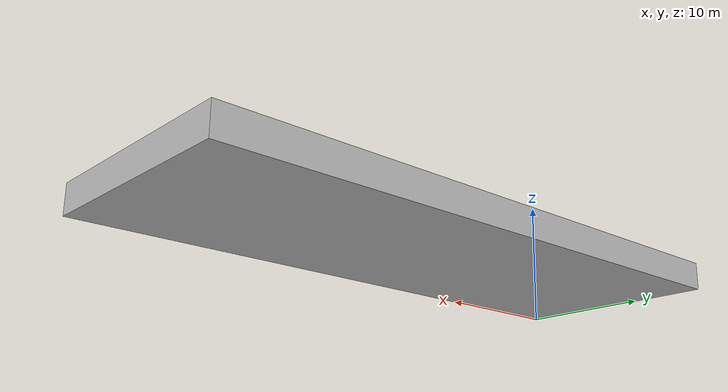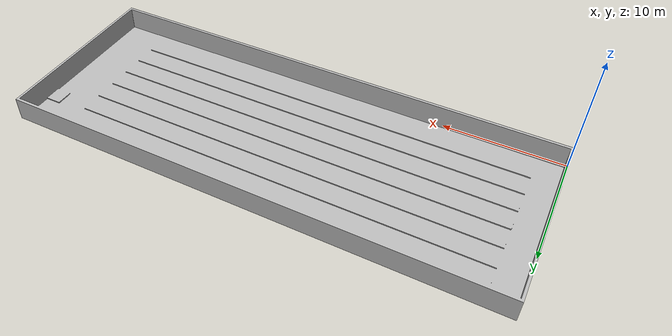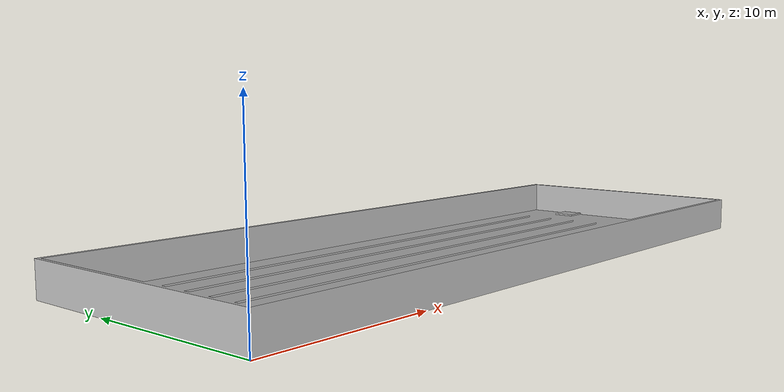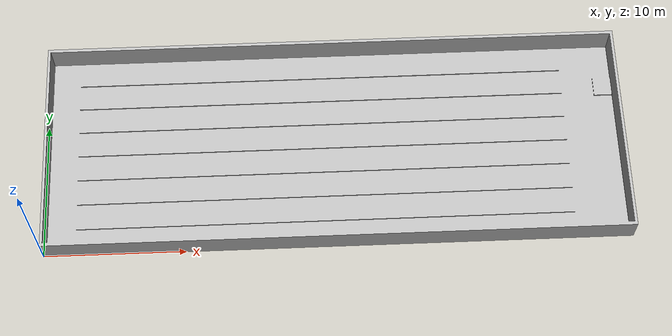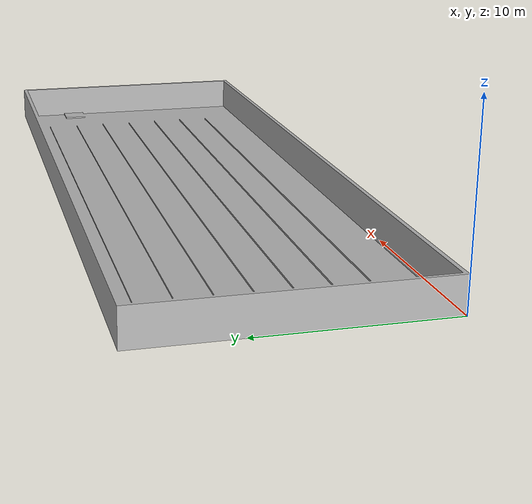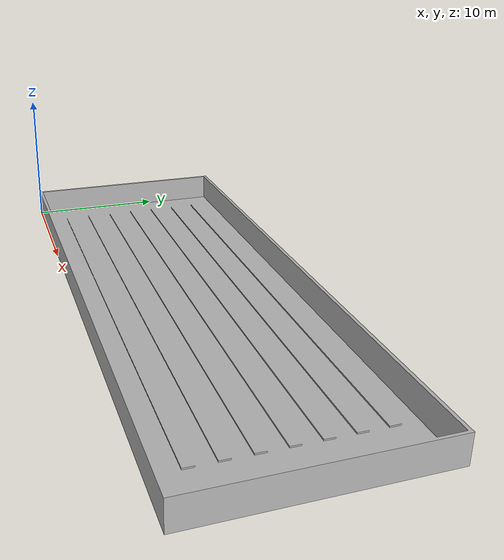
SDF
<?xml version='1.0'?>
<sdf version="1.6">
  <model name="tomato_farm">
    <pose>0 0 0 0 0 0</pose>
    <static>false</static>
    <link name="link">
      <collision name="collision">
        <geometry>
          <mesh>
	    <uri>model://tomatofarm/meshes/tomato_farm.STL</uri>
            <scale>0.001 0.001 0.001</scale>
          </mesh>
        </geometry>
      </collision>
      <visual name="visual">
        <geometry>
          <mesh>
            <uri>model://tomatofarm/meshes/tomato_farm.STL</uri>
            <scale>0.001 0.001 0.001</scale>
          </mesh>
        </geometry>
      </visual>
    </link>
  </model>
</sdf>
